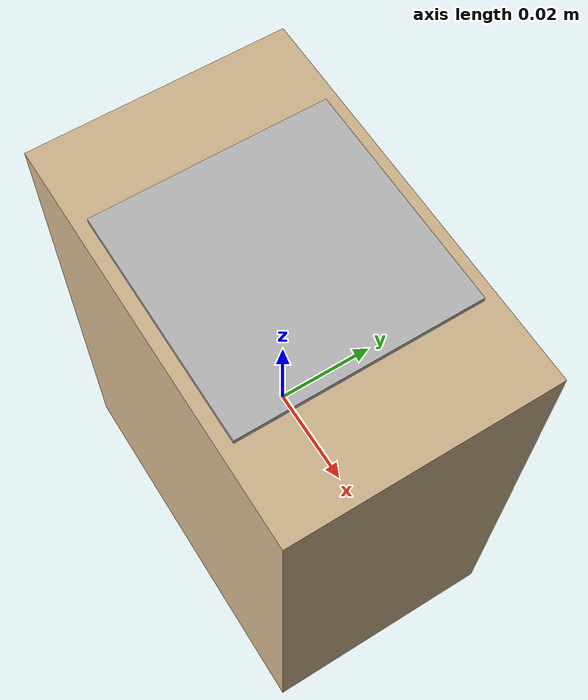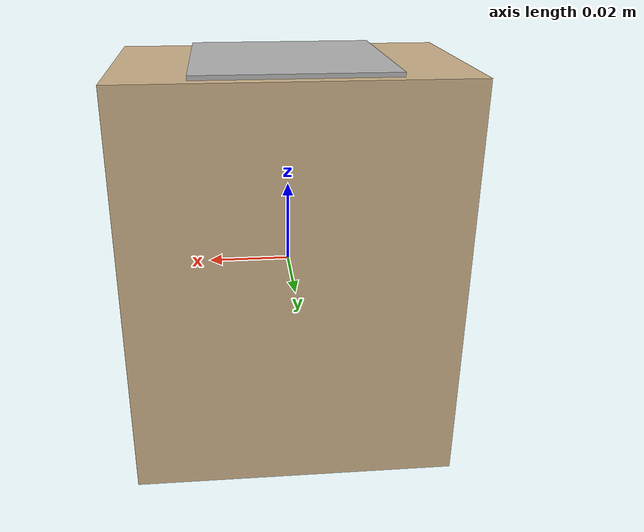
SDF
<?xml version="1.0" ?>
<sdf version="1.6">
  <model name="ar_marker_0">
    <static>false</static>
    <link name="link">

      <!-- Main box (red) -->
      <visual name="visual_box">
        <geometry>
          <box>
            <size>0.08 0.05 0.1</size>
          </box>
        </geometry>
            <material>
                <ambient>0 0 0 1</ambient>
                <diffuse>0.82 0.71 0.55</diffuse>
            </material>
      </visual>

      <!-- AR tag plate on +Z face (flat, facing up) -->
      <visual name="visual_ar_tag">
        <!-- x y z roll pitch yaw -->
        <pose>0 0 0.0506 0 -1.5708 0</pose>
        <geometry>
          <box>
            <!-- thickness is along local +X; after rotation local +X -> world +Z -->
            <size>0.001 0.045 0.045</size>
          </box>
        </geometry>
        <material>
          <script>
            <uri>model://ar_marker_0/materials/scripts</uri>
            <uri>model://ar_marker_0/materials/textures</uri>
            <name>ar_marker_0/Material</name>
          </script>
        </material>
      </visual>

      <!-- Collision (box only) -->
    <collision name="collision">
      <geometry>
        <box>
          <size>0.08 0.05 0.1</size>
        </box>
      </geometry>
      <surface>
        <friction>
          <ode>
            <mu>10.0</mu>
            <mu2>10.0</mu2>
          </ode>
        </friction>
      </surface>
    </collision>

    </link>

    <gazebo>
      <plugin name="grasp_fix" filename="libgazebo_grasp_fix.so">
        <arm>gripper_link</arm>
        <gripper_link>l_gripper_finger_link</gripper_link>
        <gripper_link>r_gripper_finger_link</gripper_link>
        <disable_collisions_on_attach>true</disable_collisions_on_attach>
      </plugin>
    </gazebo>
  </model>
</sdf>
